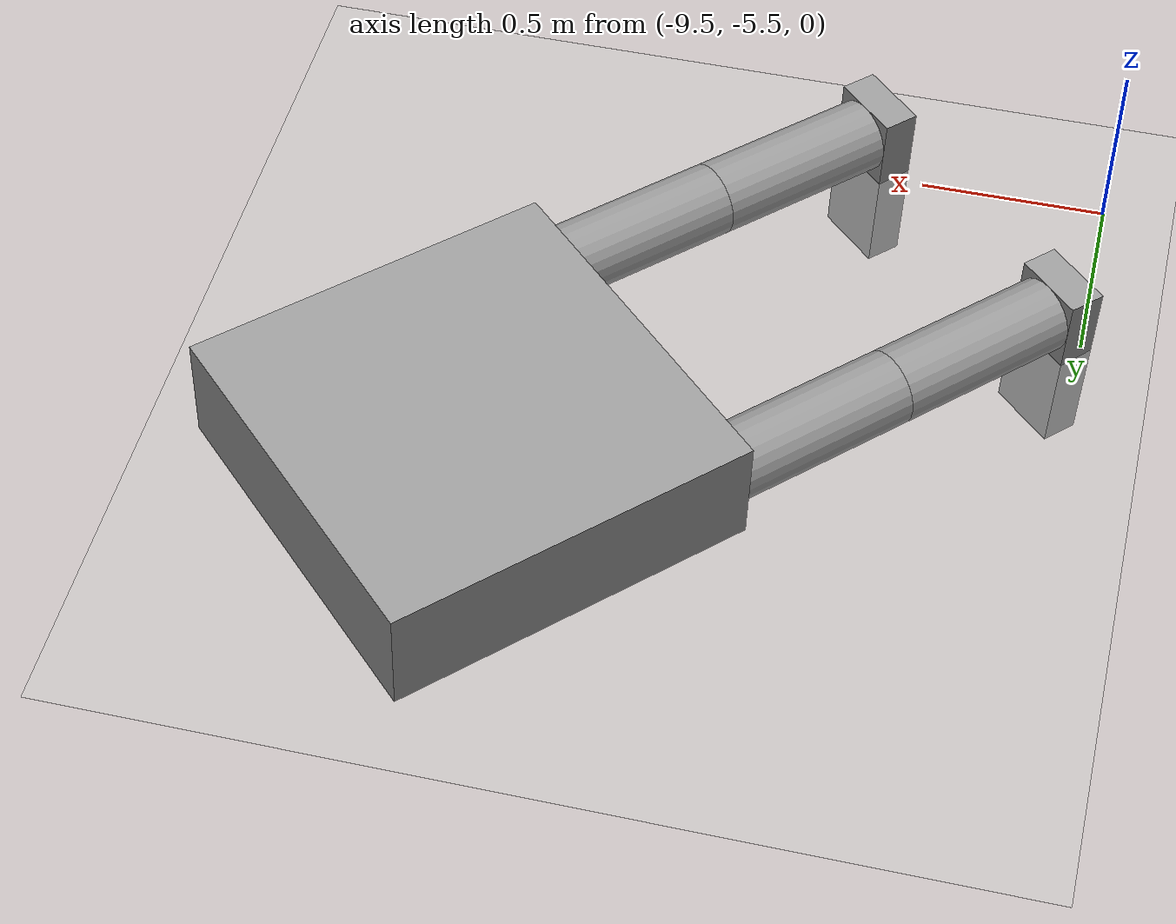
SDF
<sdf version="1.6">
 <world name="default">
  <model name="ground_plane">
   <static>1</static>
   <link name="link">
    <collision name="collision">
     <geometry><plane><normal>0 0 1</normal><size>100 100</size></plane></geometry>
     <surface><friction><ode><mu>100</mu><mu2>50</mu2></ode></friction></surface>
    </collision>
    <visual name="visual">
     <cast_shadows>0</cast_shadows>
     <geometry><plane><normal>0 0 1</normal><size>100 100</size></plane></geometry>
     <material>
      <script><uri>file://media/materials/scripts/gazebo.material</uri><name>Gazebo/Grey</name></script>
     </material>
    </visual>
   </link>
  </model>
  <model name="HumanoidRobot_0">
   <link name="link_0">
    <pose>-1.22891 3.55741 1.6 0 -0 0</pose>
    <inertial>
     <mass>1</mass>
     <inertia>
      <ixx>0.166667</ixx>
      <ixy>0</ixy>
      <ixz>0</ixz>
      <iyy>0.166667</iyy>
      <iyz>0</iyz>
      <izz>0.166667</izz>
     </inertia>
    </inertial>
    <visual name="visual">
     <geometry><box><size>0.3 1 1</size></box></geometry>
     <material>
      <lighting>1</lighting>
      <script><uri>file://media/materials/scripts/gazebo.material</uri><name>Gazebo/Grey</name></script>
      <shader type="pixel"><normal_map>__default__</normal_map></shader>
      <ambient>0.3 0.3 0.3 1</ambient>
      <diffuse>0.7 0.7 0.7 1</diffuse>
      <specular>0.01 0.01 0.01 1</specular>
      <emissive>0 0 0 1</emissive>
     </material>
    </visual>
    <collision name="collision">
     <geometry><box><size>0.3 1 1</size></box></geometry>
     <surface>
      <friction>
       <ode><mu>1</mu><mu2>1</mu2><fdir1>0 0 0</fdir1><slip1>0</slip1><slip2>0</slip2></ode>
       <torsional>
        <coefficient>1</coefficient>
        <patch_radius>0</patch_radius>
        <surface_radius>0</surface_radius>
        <use_patch_radius>1</use_patch_radius>
        <ode><slip>0</slip></ode>
       </torsional>
      </friction>
      <bounce><restitution_coefficient>0</restitution_coefficient><threshold>1e+06</threshold></bounce>
      <contact>
       <collide_without_contact>0</collide_without_contact>
       <collide_without_contact_bitmask>1</collide_without_contact_bitmask>
       <collide_bitmask>1</collide_bitmask>
       <ode>
        <soft_cfm>0</soft_cfm>
        <soft_erp>0.2</soft_erp>
        <kp>1e+13</kp>
        <kd>1</kd>
        <max_vel>0.01</max_vel>
        <min_depth>0</min_depth>
       </ode>
       <bullet>
        <split_impulse>1</split_impulse>
        <split_impulse_penetration_threshold>-0.01</split_impulse_penetration_threshold>
        <soft_cfm>0</soft_cfm>
        <soft_erp>0.2</soft_erp>
        <kp>1e+13</kp>
        <kd>1</kd>
       </bullet>
      </contact>
     </surface>
    </collision>
   </link>
   <link name="link_1">
    <pose>-1.22891 3.15741 0.849998 0 -0 0</pose>
    <inertial>
     <mass>1</mass>
     <inertia><ixx>0.145833</ixx><ixy>0</ixy><ixz>0</ixz><iyy>0.145833</iyy><iyz>0</iyz><izz>0.125</izz></inertia>
    </inertial>
    <visual name="visual">
     <geometry><cylinder><radius>0.1</radius><length>0.5</length></cylinder></geometry>
     <material>
      <lighting>1</lighting>
      <script><uri>file://media/materials/scripts/gazebo.material</uri><name>Gazebo/Grey</name></script>
      <shader type="pixel"><normal_map>__default__</normal_map></shader>
      <ambient>0.3 0.3 0.3 1</ambient>
      <diffuse>0.7 0.7 0.7 1</diffuse>
      <specular>0.01 0.01 0.01 1</specular>
      <emissive>0 0 0 1</emissive>
     </material>
    </visual>
    <collision name="collision">
     <geometry><cylinder><radius>0.1</radius><length>0.5</length></cylinder></geometry>
     <surface>
      <friction>
       <ode><mu>1</mu><mu2>1</mu2><fdir1>0 0 0</fdir1><slip1>0</slip1><slip2>0</slip2></ode>
       <torsional>
        <coefficient>1</coefficient>
        <patch_radius>0</patch_radius>
        <surface_radius>0</surface_radius>
        <use_patch_radius>1</use_patch_radius>
        <ode><slip>0</slip></ode>
       </torsional>
      </friction>
      <bounce><restitution_coefficient>0</restitution_coefficient><threshold>1e+06</threshold></bounce>
      <contact>
       <collide_without_contact>0</collide_without_contact>
       <collide_without_contact_bitmask>1</collide_without_contact_bitmask>
       <collide_bitmask>1</collide_bitmask>
       <ode>
        <soft_cfm>0</soft_cfm>
        <soft_erp>0.2</soft_erp>
        <kp>1e+13</kp>
        <kd>1</kd>
        <max_vel>0.01</max_vel>
        <min_depth>0</min_depth>
       </ode>
       <bullet>
        <split_impulse>1</split_impulse>
        <split_impulse_penetration_threshold>-0.01</split_impulse_penetration_threshold>
        <soft_cfm>0</soft_cfm>
        <soft_erp>0.2</soft_erp>
        <kp>1e+13</kp>
        <kd>1</kd>
       </bullet>
      </contact>
     </surface>
    </collision>
   </link>
   <link name="link_1_clone">
    <pose>-1.22891 3.95741 0.849998 0 -0 0</pose>
    <inertial>
     <mass>1</mass>
     <inertia><ixx>0.145833</ixx><ixy>0</ixy><ixz>0</ixz><iyy>0.145833</iyy><iyz>0</iyz><izz>0.125</izz></inertia>
    </inertial>
    <visual name="visual">
     <geometry><cylinder><radius>0.1</radius><length>0.5</length></cylinder></geometry>
     <material>
      <lighting>1</lighting>
      <script><uri>file://media/materials/scripts/gazebo.material</uri><name>Gazebo/Grey</name></script>
      <shader type="pixel"><normal_map>__default__</normal_map></shader>
      <ambient>0.3 0.3 0.3 1</ambient>
      <diffuse>0.7 0.7 0.7 1</diffuse>
      <specular>0.01 0.01 0.01 1</specular>
      <emissive>0 0 0 1</emissive>
     </material>
    </visual>
    <collision name="collision">
     <geometry><cylinder><radius>0.1</radius><length>0.5</length></cylinder></geometry>
     <surface>
      <friction>
       <ode><mu>1</mu><mu2>1</mu2><fdir1>0 0 0</fdir1><slip1>0</slip1><slip2>0</slip2></ode>
       <torsional>
        <coefficient>1</coefficient>
        <patch_radius>0</patch_radius>
        <surface_radius>0</surface_radius>
        <use_patch_radius>1</use_patch_radius>
        <ode><slip>0</slip></ode>
       </torsional>
      </friction>
      <bounce><restitution_coefficient>0</restitution_coefficient><threshold>1e+06</threshold></bounce>
      <contact>
       <collide_without_contact>0</collide_without_contact>
       <collide_without_contact_bitmask>1</collide_without_contact_bitmask>
       <collide_bitmask>1</collide_bitmask>
       <ode>
        <soft_cfm>0</soft_cfm>
        <soft_erp>0.2</soft_erp>
        <kp>1e+13</kp>
        <kd>1</kd>
        <max_vel>0.01</max_vel>
        <min_depth>0</min_depth>
       </ode>
       <bullet>
        <split_impulse>1</split_impulse>
        <split_impulse_penetration_threshold>-0.01</split_impulse_penetration_threshold>
        <soft_cfm>0</soft_cfm>
        <soft_erp>0.2</soft_erp>
        <kp>1e+13</kp>
        <kd>1</kd>
       </bullet>
      </contact>
     </surface>
    </collision>
   </link>
   <link name="link_1_clone_0">
    <pose>-1.22891 3.15741 0.349998 0 -0 0</pose>
    <inertial>
     <mass>1</mass>
     <inertia><ixx>0.145833</ixx><ixy>0</ixy><ixz>0</ixz><iyy>0.145833</iyy><iyz>0</iyz><izz>0.125</izz></inertia>
    </inertial>
    <visual name="visual">
     <geometry><cylinder><radius>0.1</radius><length>0.5</length></cylinder></geometry>
     <material>
      <lighting>1</lighting>
      <script><uri>file://media/materials/scripts/gazebo.material</uri><name>Gazebo/Grey</name></script>
      <shader type="pixel"><normal_map>__default__</normal_map></shader>
      <ambient>0.3 0.3 0.3 1</ambient>
      <diffuse>0.7 0.7 0.7 1</diffuse>
      <specular>0.01 0.01 0.01 1</specular>
      <emissive>0 0 0 1</emissive>
     </material>
    </visual>
    <collision name="collision">
     <geometry><cylinder><radius>0.1</radius><length>0.5</length></cylinder></geometry>
     <surface>
      <friction>
       <ode><mu>1</mu><mu2>1</mu2><fdir1>0 0 0</fdir1><slip1>0</slip1><slip2>0</slip2></ode>
       <torsional>
        <coefficient>1</coefficient>
        <patch_radius>0</patch_radius>
        <surface_radius>0</surface_radius>
        <use_patch_radius>1</use_patch_radius>
        <ode><slip>0</slip></ode>
       </torsional>
      </friction>
      <bounce><restitution_coefficient>0</restitution_coefficient><threshold>1e+06</threshold></bounce>
      <contact>
       <collide_without_contact>0</collide_without_contact>
       <collide_without_contact_bitmask>1</collide_without_contact_bitmask>
       <collide_bitmask>1</collide_bitmask>
       <ode>
        <soft_cfm>0</soft_cfm>
        <soft_erp>0.2</soft_erp>
        <kp>1e+13</kp>
        <kd>1</kd>
        <max_vel>0.01</max_vel>
        <min_depth>0</min_depth>
       </ode>
       <bullet>
        <split_impulse>1</split_impulse>
        <split_impulse_penetration_threshold>-0.01</split_impulse_penetration_threshold>
        <soft_cfm>0</soft_cfm>
        <soft_erp>0.2</soft_erp>
        <kp>1e+13</kp>
        <kd>1</kd>
       </bullet>
      </contact>
     </surface>
    </collision>
   </link>
   <link name="link_1_clone_1">
    <pose>-1.22891 3.95741 0.349998 0 -0 0</pose>
    <inertial>
     <mass>1</mass>
     <inertia><ixx>0.145833</ixx><ixy>0</ixy><ixz>0</ixz><iyy>0.145833</iyy><iyz>0</iyz><izz>0.125</izz></inertia>
    </inertial>
    <visual name="visual">
     <geometry><cylinder><radius>0.1</radius><length>0.5</length></cylinder></geometry>
     <material>
      <lighting>1</lighting>
      <script><uri>file://media/materials/scripts/gazebo.material</uri><name>Gazebo/Grey</name></script>
      <shader type="pixel"><normal_map>__default__</normal_map></shader>
      <ambient>0.3 0.3 0.3 1</ambient>
      <diffuse>0.7 0.7 0.7 1</diffuse>
      <specular>0.01 0.01 0.01 1</specular>
      <emissive>0 0 0 1</emissive>
     </material>
    </visual>
    <collision name="collision">
     <geometry><cylinder><radius>0.1</radius><length>0.5</length></cylinder></geometry>
     <surface>
      <friction>
       <ode><mu>1</mu><mu2>1</mu2><fdir1>0 0 0</fdir1><slip1>0</slip1><slip2>0</slip2></ode>
       <torsional>
        <coefficient>1</coefficient>
        <patch_radius>0</patch_radius>
        <surface_radius>0</surface_radius>
        <use_patch_radius>1</use_patch_radius>
        <ode><slip>0</slip></ode>
       </torsional>
      </friction>
      <bounce><restitution_coefficient>0</restitution_coefficient><threshold>1e+06</threshold></bounce>
      <contact>
       <collide_without_contact>0</collide_without_contact>
       <collide_without_contact_bitmask>1</collide_without_contact_bitmask>
       <collide_bitmask>1</collide_bitmask>
       <ode>
        <soft_cfm>0</soft_cfm>
        <soft_erp>0.2</soft_erp>
        <kp>1e+13</kp>
        <kd>1</kd>
        <max_vel>0.01</max_vel>
        <min_depth>0</min_depth>
       </ode>
       <bullet>
        <split_impulse>1</split_impulse>
        <split_impulse_penetration_threshold>-0.01</split_impulse_penetration_threshold>
        <soft_cfm>0</soft_cfm>
        <soft_erp>0.2</soft_erp>
        <kp>1e+13</kp>
        <kd>1</kd>
       </bullet>
      </contact>
     </surface>
    </collision>
   </link>
   <link name="link_4">
    <pose>-1.07891 3.95741 0.049998 0 -0 0</pose>
    <inertial>
     <mass>1</mass>
     <inertia>
      <ixx>0.166667</ixx>
      <ixy>0</ixy>
      <ixz>0</ixz>
      <iyy>0.166667</iyy>
      <iyz>0</iyz>
      <izz>0.166667</izz>
     </inertia>
    </inertial>
    <visual name="visual">
     <geometry><box><size>0.5 0.2 0.1</size></box></geometry>
     <material>
      <lighting>1</lighting>
      <script><uri>file://media/materials/scripts/gazebo.material</uri><name>Gazebo/Grey</name></script>
      <shader type="pixel"><normal_map>__default__</normal_map></shader>
      <ambient>0.3 0.3 0.3 1</ambient>
      <diffuse>0.7 0.7 0.7 1</diffuse>
      <specular>0.01 0.01 0.01 1</specular>
      <emissive>0 0 0 1</emissive>
     </material>
    </visual>
    <collision name="collision">
     <geometry><box><size>0.5 0.2 0.1</size></box></geometry>
     <surface>
      <friction>
       <ode><mu>1</mu><mu2>1</mu2><fdir1>0 0 0</fdir1><slip1>0</slip1><slip2>0</slip2></ode>
       <torsional>
        <coefficient>1</coefficient>
        <patch_radius>0</patch_radius>
        <surface_radius>0</surface_radius>
        <use_patch_radius>1</use_patch_radius>
        <ode><slip>0</slip></ode>
       </torsional>
      </friction>
      <bounce><restitution_coefficient>0</restitution_coefficient><threshold>1e+06</threshold></bounce>
      <contact>
       <collide_without_contact>0</collide_without_contact>
       <collide_without_contact_bitmask>1</collide_without_contact_bitmask>
       <collide_bitmask>1</collide_bitmask>
       <ode>
        <soft_cfm>0</soft_cfm>
        <soft_erp>0.2</soft_erp>
        <kp>1e+13</kp>
        <kd>1</kd>
        <max_vel>0.01</max_vel>
        <min_depth>0</min_depth>
       </ode>
       <bullet>
        <split_impulse>1</split_impulse>
        <split_impulse_penetration_threshold>-0.01</split_impulse_penetration_threshold>
        <soft_cfm>0</soft_cfm>
        <soft_erp>0.2</soft_erp>
        <kp>1e+13</kp>
        <kd>1</kd>
       </bullet>
      </contact>
     </surface>
    </collision>
   </link>
   <link name="link_4_clone">
    <pose>-1.07891 3.15741 0.049998 0 -0 0</pose>
    <inertial>
     <mass>1</mass>
     <inertia>
      <ixx>0.166667</ixx>
      <ixy>0</ixy>
      <ixz>0</ixz>
      <iyy>0.166667</iyy>
      <iyz>0</iyz>
      <izz>0.166667</izz>
     </inertia>
    </inertial>
    <visual name="visual">
     <geometry><box><size>0.5 0.2 0.1</size></box></geometry>
     <material>
      <lighting>1</lighting>
      <script><uri>file://media/materials/scripts/gazebo.material</uri><name>Gazebo/Grey</name></script>
      <shader type="pixel"><normal_map>__default__</normal_map></shader>
      <ambient>0.3 0.3 0.3 1</ambient>
      <diffuse>0.7 0.7 0.7 1</diffuse>
      <specular>0.01 0.01 0.01 1</specular>
      <emissive>0 0 0 1</emissive>
     </material>
    </visual>
    <collision name="collision">
     <geometry><box><size>0.5 0.2 0.1</size></box></geometry>
     <surface>
      <friction>
       <ode><mu>1</mu><mu2>1</mu2><fdir1>0 0 0</fdir1><slip1>0</slip1><slip2>0</slip2></ode>
       <torsional>
        <coefficient>1</coefficient>
        <patch_radius>0</patch_radius>
        <surface_radius>0</surface_radius>
        <use_patch_radius>1</use_patch_radius>
        <ode><slip>0</slip></ode>
       </torsional>
      </friction>
      <bounce><restitution_coefficient>0</restitution_coefficient><threshold>1e+06</threshold></bounce>
      <contact>
       <collide_without_contact>0</collide_without_contact>
       <collide_without_contact_bitmask>1</collide_without_contact_bitmask>
       <collide_bitmask>1</collide_bitmask>
       <ode>
        <soft_cfm>0</soft_cfm>
        <soft_erp>0.2</soft_erp>
        <kp>1e+13</kp>
        <kd>1</kd>
        <max_vel>0.01</max_vel>
        <min_depth>0</min_depth>
       </ode>
       <bullet>
        <split_impulse>1</split_impulse>
        <split_impulse_penetration_threshold>-0.01</split_impulse_penetration_threshold>
        <soft_cfm>0</soft_cfm>
        <soft_erp>0.2</soft_erp>
        <kp>1e+13</kp>
        <kd>1</kd>
       </bullet>
      </contact>
     </surface>
    </collision>
   </link>
   <joint name="link_0_JOINT_0" type="revolute">
    <parent>link_0</parent>
    <child>link_1</child>
    <pose>0 0 0.25 0 0.03 0</pose>
    <axis>
     <xyz>0 0 1</xyz>
     <use_parent_model_frame>1</use_parent_model_frame>
     <limit>
      <lower>-1.79769e+308</lower>
      <upper>1.79769e+308</upper>
      <effort>-1</effort>
      <velocity>-1</velocity>
     </limit>
     <dynamics>
      <spring_reference>0</spring_reference>
      <spring_stiffness>0</spring_stiffness>
      <damping>0</damping>
      <friction>0</friction>
     </dynamics>
    </axis>
    <physics>
     <ode><limit><cfm>0</cfm><erp>0.2</erp></limit><suspension><cfm>0</cfm><erp>0.2</erp></suspension></ode>
    </physics>
   </joint>
   <joint name="link_0_JOINT_1" type="revolute">
    <parent>link_0</parent>
    <child>link_1_clone</child>
    <pose>0 0 0.25 0 -0 0</pose>
    <axis>
     <xyz>0 0 1</xyz>
     <use_parent_model_frame>0</use_parent_model_frame>
     <limit>
      <lower>-1.79769e+308</lower>
      <upper>1.79769e+308</upper>
      <effort>-1</effort>
      <velocity>-1</velocity>
     </limit>
     <dynamics>
      <spring_reference>0</spring_reference>
      <spring_stiffness>0</spring_stiffness>
      <damping>0</damping>
      <friction>0</friction>
     </dynamics>
    </axis>
    <physics>
     <ode><limit><cfm>0</cfm><erp>0.2</erp></limit><suspension><cfm>0</cfm><erp>0.2</erp></suspension></ode>
    </physics>
   </joint>
   <joint name="link_1_JOINT_2" type="revolute">
    <parent>link_1</parent>
    <child>link_1_clone_0</child>
    <pose>0 0 0.25 0 -0 0</pose>
    <axis>
     <xyz>0 0 1</xyz>
     <use_parent_model_frame>0</use_parent_model_frame>
     <limit>
      <lower>-1.79769e+308</lower>
      <upper>1.79769e+308</upper>
      <effort>-1</effort>
      <velocity>-1</velocity>
     </limit>
     <dynamics>
      <spring_reference>0</spring_reference>
      <spring_stiffness>0</spring_stiffness>
      <damping>0</damping>
      <friction>0</friction>
     </dynamics>
    </axis>
    <physics>
     <ode><limit><cfm>0</cfm><erp>0.2</erp></limit><suspension><cfm>0</cfm><erp>0.2</erp></suspension></ode>
    </physics>
   </joint>
   <joint name="link_1_clone_0_JOINT_4" type="revolute">
    <parent>link_1_clone_0</parent>
    <child>link_4_clone</child>
    <pose>-0.15 0 0 0 -0 0</pose>
    <axis>
     <xyz>0 0 1</xyz>
     <use_parent_model_frame>0</use_parent_model_frame>
     <limit>
      <lower>-1.79769e+308</lower>
      <upper>1.79769e+308</upper>
      <effort>-1</effort>
      <velocity>-1</velocity>
     </limit>
     <dynamics>
      <spring_reference>0</spring_reference>
      <spring_stiffness>0</spring_stiffness>
      <damping>0</damping>
      <friction>0</friction>
     </dynamics>
    </axis>
    <physics>
     <ode><limit><cfm>0</cfm><erp>0.2</erp></limit><suspension><cfm>0</cfm><erp>0.2</erp></suspension></ode>
    </physics>
   </joint>
   <joint name="link_1_clone_1_JOINT_5" type="revolute">
    <parent>link_1_clone_1</parent>
    <child>link_4</child>
    <pose>-0.15 0 0 0 -0 0</pose>
    <axis>
     <xyz>0 0 1</xyz>
     <use_parent_model_frame>0</use_parent_model_frame>
     <limit>
      <lower>-1.79769e+308</lower>
      <upper>1.79769e+308</upper>
      <effort>-1</effort>
      <velocity>-1</velocity>
     </limit>
     <dynamics>
      <spring_reference>0</spring_reference>
      <spring_stiffness>0</spring_stiffness>
      <damping>0</damping>
     </dynamics>
    </axis>
    <physics>
     <ode><limit><cfm>0</cfm><erp>0.2</erp></limit><suspension><cfm>0</cfm><erp>0.2</erp></suspension></ode>
    </physics>
   </joint>
   <joint name="link_1_clone_JOINT_3" type="revolute">
    <parent>link_1_clone</parent>
    <child>link_1_clone_1</child>
    <pose>0 0 0.25 0 -0 0</pose>
    <axis>
     <xyz>1 0 0</xyz>
     <use_parent_model_frame>0</use_parent_model_frame>
     <limit>
      <lower>-1.79769e+308</lower>
      <upper>1.79769e+308</upper>
      <effort>-1</effort>
      <velocity>-1</velocity>
     </limit>
     <dynamics>
      <spring_reference>0</spring_reference>
      <spring_stiffness>0</spring_stiffness>
      <damping>0</damping>
      <friction>0</friction>
     </dynamics>
    </axis>
    <physics>
     <ode><limit><cfm>0</cfm><erp>0.2</erp></limit><suspension><cfm>0</cfm><erp>0.2</erp></suspension></ode>
    </physics>
   </joint>
   <static>0</static>
   <pose>-6.56408 -7.77219 -1.12774 -1.3e-05 1.52537 0.805798</pose>
  </model>
 </world>
</sdf>
